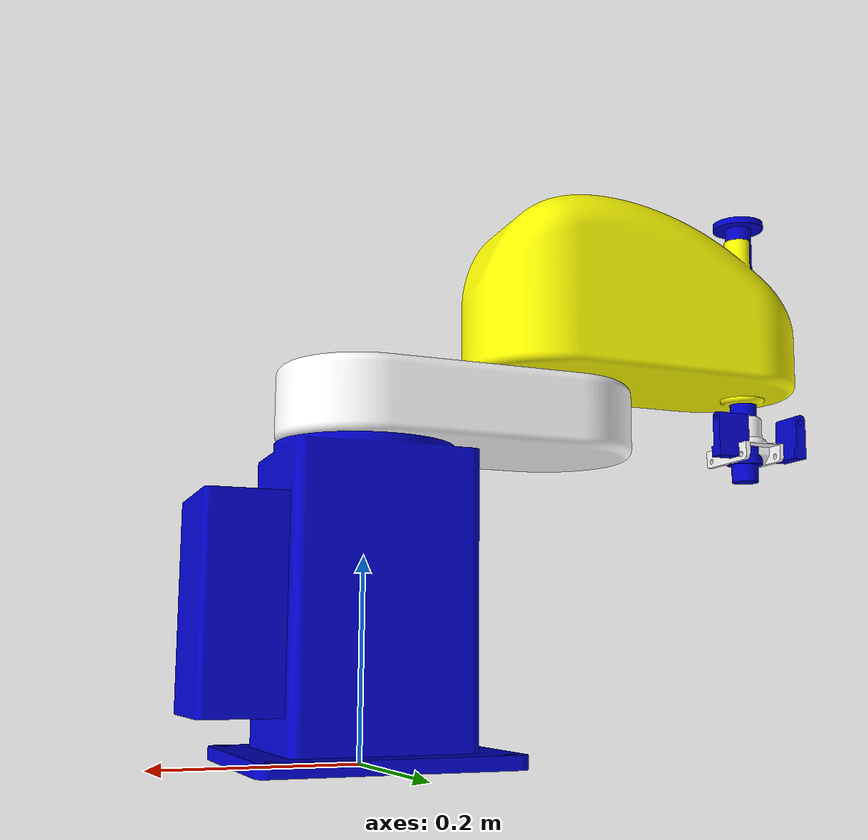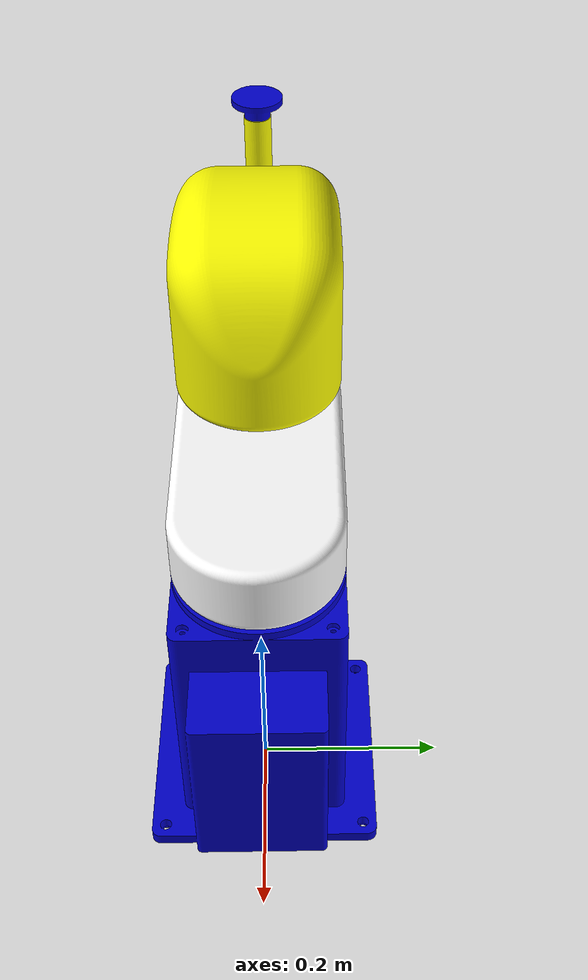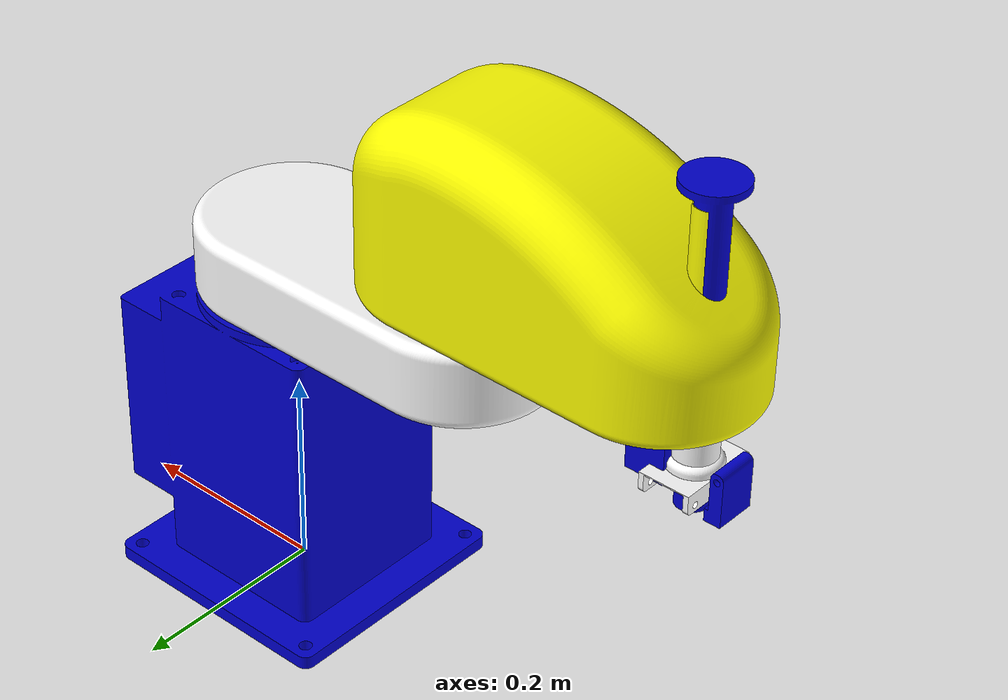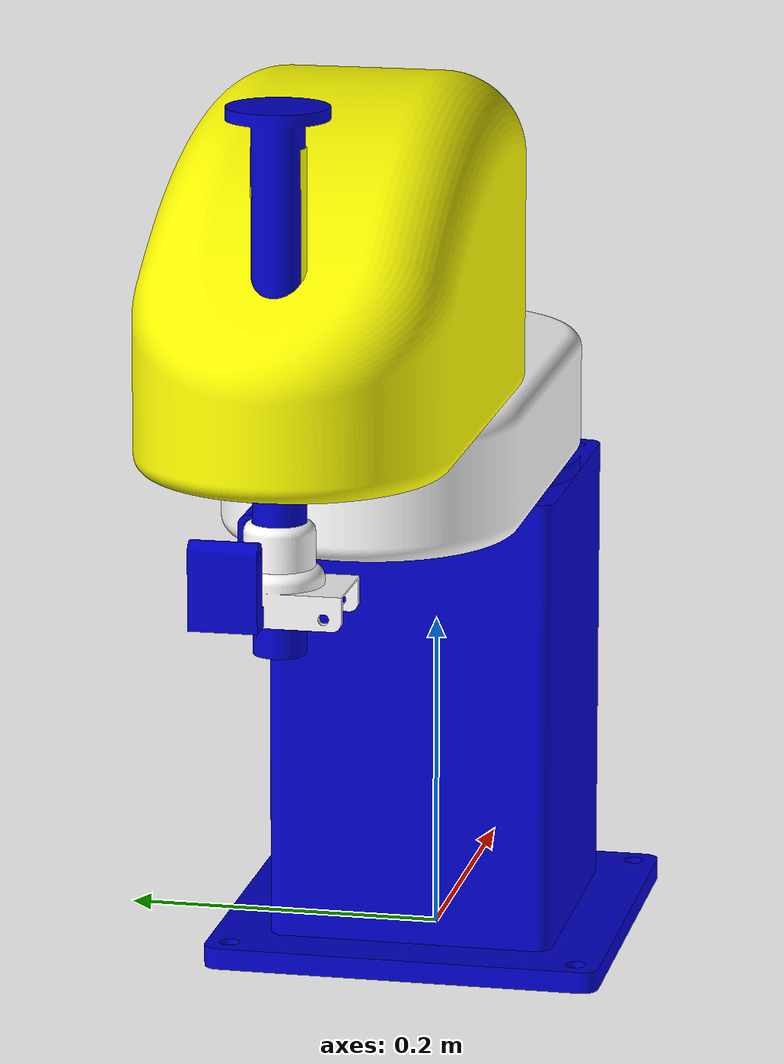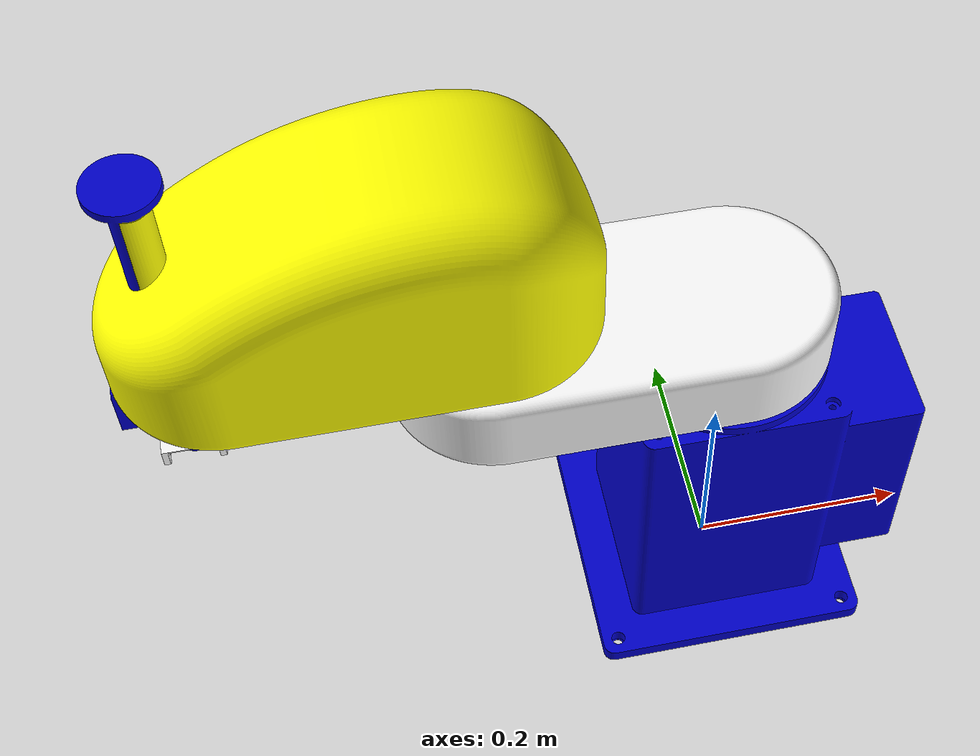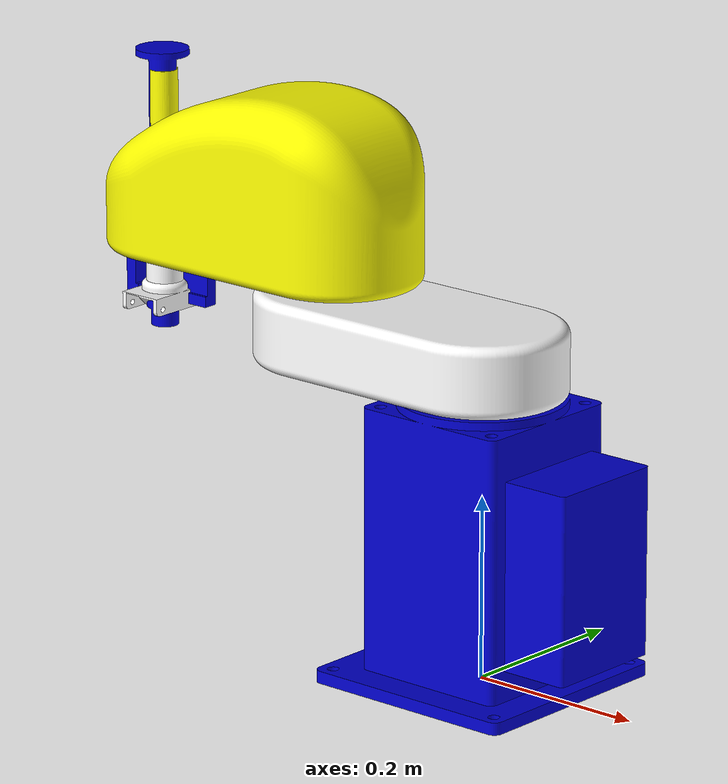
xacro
<?xml version="1.0"?>
<robot xmlns:xacro="http://www.ros.org/wiki/xacro" name="scara">

    <xacro:arg name="is_sim" default="true"/>
    <xacro:include filename="$(find scara_description)/urdf/scara_gazebo.xacro" />

    <!-- Materiais / Cores -->
    <material name="blue">
        <color rgba="0 0 0.8 1"/>
    </material>
    <material name="white">
        <color rgba="1 1 1 1"/>
    </material>
    <material name="yellow">
        <color rgba="1 1 0 1"/>
    </material>

    <xacro:property name="PI" value="3.14159265359" />
    <xacro:property name="effort" value="30.0" />
    <xacro:property name="velocity" value="1.0" />

    <xacro:macro name="default_inertial" params="mass">
        <inertial>
            <origin xyz="0 0 0" rpy="0 0 0"/>
            <mass value="${mass}" />
            <inertia ixx="1.0" ixy="0.0" ixz="0.0" iyy="1.0" iyz="0.0" izz="1.0" />
        </inertial>
    </xacro:macro>

    <link name="world"/>

    <joint name="virtual_joint" type="fixed">
        <parent link="world"/>
        <child link="base_link"/>
        <origin xyz="0 0 0" rpy="0 0 0"/>
    </joint>

    <!-- BASE LINK (bs.stl) -->
    <link name="base_link">
        <xacro:default_inertial mass="2.0"/>
        <visual>
            <origin rpy="0 0 0" xyz="0 0 0.15"/>
            <geometry>
                <mesh filename="package://scara_description/meshes/bs.stl" scale="0.001 0.001 0.001"/>
            </geometry>
            <material name="blue"/>
        </visual>
        <collision>
            <origin rpy="0 0 0" xyz="0 0 0.15"/>
            <geometry>
                <mesh filename="package://scara_description/meshes/bs.stl" scale="0.001 0.001 0.001"/>
            </geometry>
        </collision>
    </link>

    <!-- JOINT 1 (base_link -> es_link) -->
    <joint name="joint_1" type="revolute">
        <parent link="base_link"/>
        <child link="es_link"/>

        <origin xyz="0 0 0.309" rpy="0 0 0"/>
        <axis xyz="0 0 1"/>
        <limit lower="-1.57" upper="1.57" effort="${effort}" velocity="${velocity}"/>
    </joint>

    <!-- ES LINK (es.stl) -->
    <link name="es_link">
        <xacro:default_inertial mass="0.5"/>
        <visual>
            <origin rpy="0 0 0" xyz="-0.1 0 0"/>
            <geometry>
                <mesh filename="package://scara_description/meshes/es.stl" scale="0.001 0.001 0.001"/>
            </geometry>
            <material name="white"/>
        </visual>
        <collision>
            <origin rpy="0 0 0" xyz="-0.1 0 0"/>
            <geometry>
                <mesh filename="package://scara_description/meshes/es.stl" scale="0.001 0.001 0.001"/>
            </geometry>
        </collision>
    </link>

    <!-- JOINT 2 (es_link -> as_link) -->
    <joint name="joint_2" type="revolute">
        <parent link="es_link"/>
        <child link="as_link"/>
        <origin xyz="-0.2 0 0" rpy="0 0 0"/>
        <axis xyz="0 0 1"/>
        <limit lower="-1.57" upper="1.57" effort="${effort}" velocity="${velocity}"/>
    </joint>

    <!-- AS LINK (as.stl) -->
    <link name="as_link">
        <xacro:default_inertial mass="0.5"/>
        <visual>
            <origin rpy="0 0 0" xyz="-0.105 0 0.125"/>
            <geometry>
                <mesh filename="package://scara_description/meshes/as.stl" scale="0.001 0.001 0.001"/>
            </geometry>
            <material name="yellow"/>
        </visual>
        <collision>
            <origin rpy="0 0 0" xyz="-0.105 0 0.125"/>
            <geometry>
                <mesh filename="package://scara_description/meshes/as.stl" scale="0.001 0.001 0.001"/>
            </geometry>
        </collision>
    </link>

    <!-- JOINT 3 (as_link -> cs_link) - Translação/Prismática no eixo Z -->
    <joint name="joint_3" type="prismatic">
        <parent link="as_link"/>
        <child link="cs_link"/>
        <origin xyz="-0.25 0 0" rpy="0 0 0"/>
        <axis xyz="0 0 1"/>
        <limit lower="0.127" upper="0.154" effort="${effort}" velocity="${velocity}"/>
    </joint>

    <!-- CS LINK (cs.stl) -->
    <link name="cs_link">
        <xacro:default_inertial mass="0.15"/>
        <visual>
            <origin rpy="0 0 0" xyz="0 0 0"/>
            <geometry>
                <mesh filename="package://scara_description/meshes/cs.stl" scale="0.001 0.001 0.001"/>
            </geometry>
            <material name="blue"/>
        </visual>
        <collision>
            <origin rpy="0 0 0" xyz="0 0 0"/>
            <geometry>
                <mesh filename="package://scara_description/meshes/cs.stl" scale="0.001 0.001 0.001"/>
            </geometry>
        </collision>
    </link>

    <!-- JOINT WRIST (cs_link -> g1_gripper) -->
    <joint name="wrist_joint" type="revolute">
        <parent link="cs_link"/>
        <child link="g1_gripper"/>
        <origin xyz="0 0 -0.1" rpy="0 0 0"/>
        <axis xyz="0 0 1"/>
        <limit lower="-1.57" upper="1.57" effort="${effort}" velocity="${velocity}"/>
    </joint>

    <!-- G1 GRIPPER (g1.stl) -->
    <link name="g1_gripper">
        <xacro:default_inertial mass="0.1"/>
        <visual>
            <origin rpy="0 0 0" xyz="0 0 0"/>
            <geometry>
                <mesh filename="package://scara_description/meshes/g1.stl" scale="0.001 0.001 0.001"/>
            </geometry>
            <material name="white"/>
        </visual>
        <collision>
            <origin rpy="0 0 0" xyz="0 0 0"/>
            <geometry>
                <mesh filename="package://scara_description/meshes/g1.stl" scale="0.001 0.001 0.001"/>
            </geometry>
        </collision>
    </link>

    <!-- GRIPPER JOINT 1 (g1_gripper -> g2_gripper) -->
    <joint name="gripper_joint1" type="revolute">
        <parent link="g1_gripper"/>
        <child link="g2_gripper"/>
        <origin xyz="0.05 0 0" rpy="0 0 0"/>
        <axis xyz="0 0 1"/>
        <limit lower="-1.57" upper="1.57" effort="${effort}" velocity="${velocity}"/>
    </joint>

    <!-- G2 GRIPPER (g2.stl) -->
    <link name="g2_gripper">
        <xacro:default_inertial mass="0.02"/>
        <visual>
            <origin rpy="0 0 0" xyz="0 0 0"/>
            <geometry>
                <mesh filename="package://scara_description/meshes/g2.stl" scale="0.001 0.001 0.001"/>
            </geometry>
            <material name="blue"/>
        </visual>
        <collision>
            <origin rpy="0 0 0" xyz="0 0 0"/>
            <geometry>
                <mesh filename="package://scara_description/meshes/g2.stl" scale="0.001 0.001 0.001"/>
            </geometry>
        </collision>
    </link>

    <!-- GRIPPER JOINT 2 (g1_gripper -> g3_gripper) -->
    <joint name="gripper_joint2" type="revolute">
        <parent link="g1_gripper"/>
        <child link="g3_gripper"/>
        <origin xyz="-0.05 0 0" rpy="0 0 0"/>
        <axis xyz="0 0 1"/>
        <limit lower="-1.57" upper="1.57" effort="${effort}" velocity="${velocity}"/>
        <!-- Adicione a tag mimic se g3 imitar g2: -->
        <mimic joint="gripper_joint1" multiplier="-1"/>
    </joint>

    <!-- G3 GRIPPER (g3.stl) -->
    <link name="g3_gripper">
        <xacro:default_inertial mass="0.02"/>
        <visual>
            <origin rpy="0 0 0" xyz="0 0 0"/>
            <geometry>
                <mesh filename="package://scara_description/meshes/g3.stl" scale="0.001 0.001 0.001"/>
            </geometry>
            <material name="blue"/>
        </visual>
        <collision>
            <origin rpy="0 0 0" xyz="0 0 0"/>
            <geometry>
                <mesh filename="package://scara_description/meshes/g3.stl" scale="0.001 0.001 0.001"/>
            </geometry>
        </collision>
    </link>

</robot>
